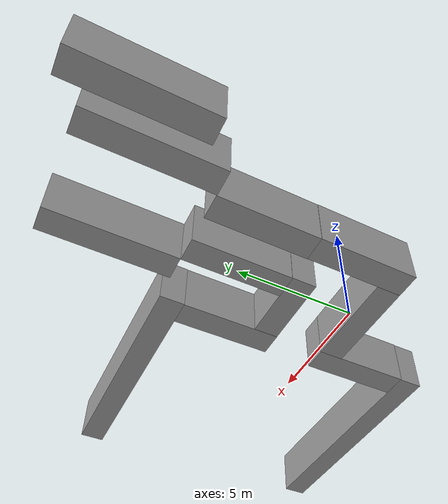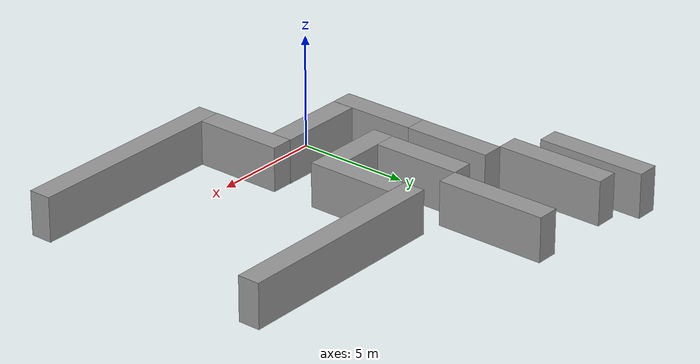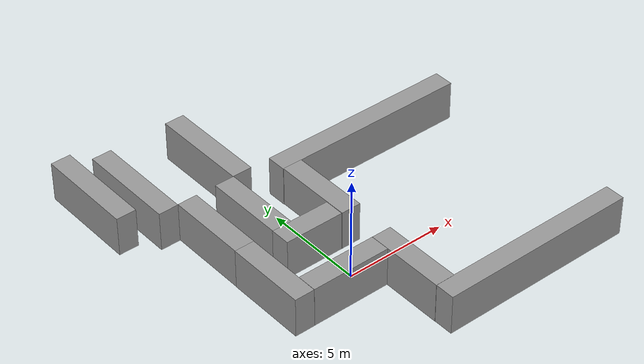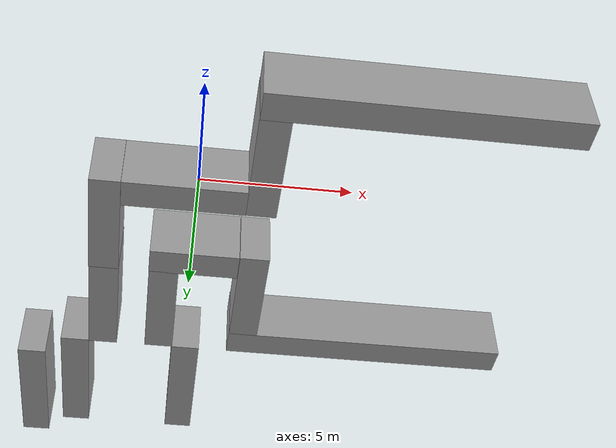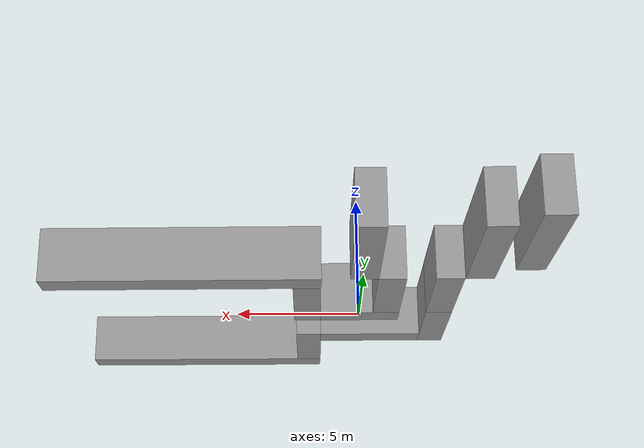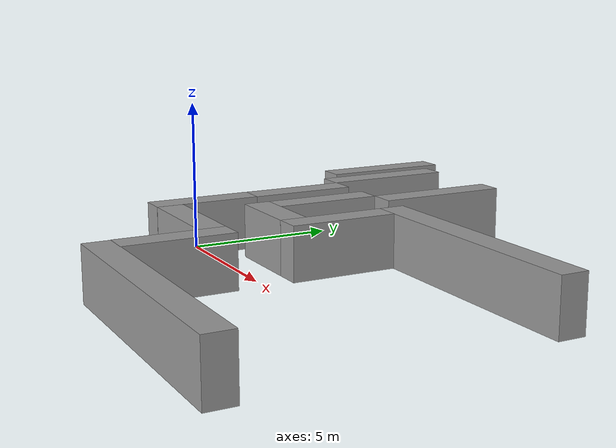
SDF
<?xml version='1.0'?>
<sdf version='1.7'>
  <model name='hsr_corridor_environment'>
    <link name='link'>
      <inertial>
        <mass>1</mass>
        <inertia>
          <ixx>0.166667</ixx>
          <ixy>0</ixy>
          <ixz>0</ixz>
          <iyy>0.166667</iyy>
          <iyz>0</iyz>
          <izz>0.166667</izz>
        </inertia>
        <pose>0 0 0 0 -0 0</pose>
      </inertial>
      <self_collide>0</self_collide>
      <enable_wind>0</enable_wind>
      <kinematic>0</kinematic>
      <pose>-0.422049 -0.023136 0 0 -0 0</pose>
      <gravity>1</gravity>
      <visual name='visual'>
        <geometry>
          <box>
            <size>4 1 2</size>
          </box>
        </geometry>
        <material>
          <script>
            <name>Gazebo/Grey</name>
            <uri>file://media/materials/scripts/gazebo.material</uri>
          </script>
          <shader type='pixel'>
            <normal_map>__default__</normal_map>
          </shader>
          <ambient>0.3 0.3 0.3 1</ambient>
          <diffuse>0.7 0.7 0.7 1</diffuse>
          <specular>0.01 0.01 0.01 1</specular>
          <emissive>0 0 0 1</emissive>
        </material>
        <pose>0 0 0 0 -0 0</pose>
        <transparency>0</transparency>
        <cast_shadows>1</cast_shadows>
      </visual>
      <collision name='collision'>
        <laser_retro>0</laser_retro>
        <max_contacts>10</max_contacts>
        <pose>0 0 0 0 -0 0</pose>
        <geometry>
          <box>
            <size>4 1 2</size>
          </box>
        </geometry>
        <surface>
          <friction>
            <ode>
              <mu>1</mu>
              <mu2>1</mu2>
              <fdir1>0 0 0</fdir1>
              <slip1>0</slip1>
              <slip2>0</slip2>
            </ode>
            <torsional>
              <coefficient>1</coefficient>
              <patch_radius>0</patch_radius>
              <surface_radius>0</surface_radius>
              <use_patch_radius>1</use_patch_radius>
              <ode>
                <slip>0</slip>
              </ode>
            </torsional>
          </friction>
          <bounce>
            <restitution_coefficient>0</restitution_coefficient>
            <threshold>1e+06</threshold>
          </bounce>
          <contact>
            <collide_without_contact>0</collide_without_contact>
            <collide_without_contact_bitmask>1</collide_without_contact_bitmask>
            <collide_bitmask>1</collide_bitmask>
            <ode>
              <soft_cfm>0</soft_cfm>
              <soft_erp>0.2</soft_erp>
              <kp>1e+13</kp>
              <kd>1</kd>
              <max_vel>0.01</max_vel>
              <min_depth>0</min_depth>
            </ode>
            <bullet>
              <split_impulse>1</split_impulse>
              <split_impulse_penetration_threshold>-0.01</split_impulse_penetration_threshold>
              <soft_cfm>0</soft_cfm>
              <soft_erp>0.2</soft_erp>
              <kp>1e+13</kp>
              <kd>1</kd>
            </bullet>
          </contact>
        </surface>
      </collision>
    </link>
    <link name='link_0'>
      <inertial>
        <mass>1</mass>
        <inertia>
          <ixx>0.166667</ixx>
          <ixy>0</ixy>
          <ixz>0</ixz>
          <iyy>0.166667</iyy>
          <iyz>0</iyz>
          <izz>0.166667</izz>
        </inertia>
        <pose>0 0 0 0 -0 0</pose>
      </inertial>
      <pose>-2.92683 1.47347 -0 0 -0 0</pose>
      <gravity>1</gravity>
      <self_collide>0</self_collide>
      <kinematic>0</kinematic>
      <enable_wind>0</enable_wind>
      <visual name='visual'>
        <pose>0 0 0 0 -0 0</pose>
        <geometry>
          <box>
            <size>1 4 2</size>
          </box>
        </geometry>
        <material>
          <lighting>1</lighting>
          <script>
            <uri>file://media/materials/scripts/gazebo.material</uri>
            <name>Gazebo/Grey</name>
          </script>
          <shader type='pixel'>
            <normal_map>__default__</normal_map>
          </shader>
          <ambient>0.3 0.3 0.3 1</ambient>
          <diffuse>0.7 0.7 0.7 1</diffuse>
          <specular>0.01 0.01 0.01 1</specular>
          <emissive>0 0 0 1</emissive>
        </material>
        <transparency>0</transparency>
        <cast_shadows>1</cast_shadows>
      </visual>
      <collision name='collision'>
        <laser_retro>0</laser_retro>
        <max_contacts>10</max_contacts>
        <pose>0 0 0 0 -0 0</pose>
        <geometry>
          <box>
            <size>1 4 2</size>
          </box>
        </geometry>
        <surface>
          <friction>
            <ode>
              <mu>1</mu>
              <mu2>1</mu2>
              <fdir1>0 0 0</fdir1>
              <slip1>0</slip1>
              <slip2>0</slip2>
            </ode>
            <torsional>
              <coefficient>1</coefficient>
              <patch_radius>0</patch_radius>
              <surface_radius>0</surface_radius>
              <use_patch_radius>1</use_patch_radius>
              <ode>
                <slip>0</slip>
              </ode>
            </torsional>
          </friction>
          <bounce>
            <restitution_coefficient>0</restitution_coefficient>
            <threshold>1e+06</threshold>
          </bounce>
          <contact>
            <collide_without_contact>0</collide_without_contact>
            <collide_without_contact_bitmask>1</collide_without_contact_bitmask>
            <collide_bitmask>1</collide_bitmask>
            <ode>
              <soft_cfm>0</soft_cfm>
              <soft_erp>0.2</soft_erp>
              <kp>1e+13</kp>
              <kd>1</kd>
              <max_vel>0.01</max_vel>
              <min_depth>0</min_depth>
            </ode>
            <bullet>
              <split_impulse>1</split_impulse>
              <split_impulse_penetration_threshold>-0.01</split_impulse_penetration_threshold>
              <soft_cfm>0</soft_cfm>
              <soft_erp>0.2</soft_erp>
              <kp>1e+13</kp>
              <kd>1</kd>
            </bullet>
          </contact>
        </surface>
      </collision>
    </link>
    <link name='link_2'>
      <inertial>
        <mass>1</mass>
        <inertia>
          <ixx>0.166667</ixx>
          <ixy>0</ixy>
          <ixz>0</ixz>
          <iyy>0.166667</iyy>
          <iyz>0</iyz>
          <izz>0.166667</izz>
        </inertia>
        <pose>0 0 0 0 -0 0</pose>
      </inertial>
      <pose>0.093366 2.99271 0 0 -0 0</pose>
      <gravity>1</gravity>
      <self_collide>0</self_collide>
      <kinematic>0</kinematic>
      <enable_wind>0</enable_wind>
      <visual name='visual'>
        <pose>0 0 0 0 -0 0</pose>
        <geometry>
          <box>
            <size>3 1 2</size>
          </box>
        </geometry>
        <material>
          <lighting>1</lighting>
          <script>
            <uri>file://media/materials/scripts/gazebo.material</uri>
            <name>Gazebo/Grey</name>
          </script>
          <shader type='pixel'>
            <normal_map>__default__</normal_map>
          </shader>
          <ambient>0.3 0.3 0.3 1</ambient>
          <diffuse>0.7 0.7 0.7 1</diffuse>
          <specular>0.01 0.01 0.01 1</specular>
          <emissive>0 0 0 1</emissive>
        </material>
        <transparency>0</transparency>
        <cast_shadows>1</cast_shadows>
      </visual>
      <collision name='collision'>
        <laser_retro>0</laser_retro>
        <max_contacts>10</max_contacts>
        <pose>0 0 0 0 -0 0</pose>
        <geometry>
          <box>
            <size>3 1 2</size>
          </box>
        </geometry>
        <surface>
          <friction>
            <ode>
              <mu>1</mu>
              <mu2>1</mu2>
              <fdir1>0 0 0</fdir1>
              <slip1>0</slip1>
              <slip2>0</slip2>
            </ode>
            <torsional>
              <coefficient>1</coefficient>
              <patch_radius>0</patch_radius>
              <surface_radius>0</surface_radius>
              <use_patch_radius>1</use_patch_radius>
              <ode>
                <slip>0</slip>
              </ode>
            </torsional>
          </friction>
          <bounce>
            <restitution_coefficient>0</restitution_coefficient>
            <threshold>1e+06</threshold>
          </bounce>
          <contact>
            <collide_without_contact>0</collide_without_contact>
            <collide_without_contact_bitmask>1</collide_without_contact_bitmask>
            <collide_bitmask>1</collide_bitmask>
            <ode>
              <soft_cfm>0</soft_cfm>
              <soft_erp>0.2</soft_erp>
              <kp>1e+13</kp>
              <kd>1</kd>
              <max_vel>0.01</max_vel>
              <min_depth>0</min_depth>
            </ode>
            <bullet>
              <split_impulse>1</split_impulse>
              <split_impulse_penetration_threshold>-0.01</split_impulse_penetration_threshold>
              <soft_cfm>0</soft_cfm>
              <soft_erp>0.2</soft_erp>
              <kp>1e+13</kp>
              <kd>1</kd>
            </bullet>
          </contact>
        </surface>
      </collision>
    </link>
    <link name='link_3'>
      <inertial>
        <mass>1</mass>
        <inertia>
          <ixx>0.166667</ixx>
          <ixy>0</ixy>
          <ixz>0</ixz>
          <iyy>0.166667</iyy>
          <iyz>0</iyz>
          <izz>0.166667</izz>
        </inertia>
        <pose>0 0 0 0 -0 0</pose>
      </inertial>
      <pose>-0.898813 5.47054 0 0 -0 0</pose>
      <gravity>1</gravity>
      <self_collide>0</self_collide>
      <kinematic>0</kinematic>
      <enable_wind>0</enable_wind>
      <visual name='visual'>
        <pose>0 0 0 0 -0 0</pose>
        <geometry>
          <box>
            <size>1 4 2</size>
          </box>
        </geometry>
        <material>
          <lighting>1</lighting>
          <script>
            <uri>file://media/materials/scripts/gazebo.material</uri>
            <name>Gazebo/Grey</name>
          </script>
          <shader type='pixel'>
            <normal_map>__default__</normal_map>
          </shader>
          <ambient>0.3 0.3 0.3 1</ambient>
          <diffuse>0.7 0.7 0.7 1</diffuse>
          <specular>0.01 0.01 0.01 1</specular>
          <emissive>0 0 0 1</emissive>
        </material>
        <transparency>0</transparency>
        <cast_shadows>1</cast_shadows>
      </visual>
      <collision name='collision'>
        <laser_retro>0</laser_retro>
        <max_contacts>10</max_contacts>
        <pose>0 0 0 0 -0 0</pose>
        <geometry>
          <box>
            <size>1 4 2</size>
          </box>
        </geometry>
        <surface>
          <friction>
            <ode>
              <mu>1</mu>
              <mu2>1</mu2>
              <fdir1>0 0 0</fdir1>
              <slip1>0</slip1>
              <slip2>0</slip2>
            </ode>
            <torsional>
              <coefficient>1</coefficient>
              <patch_radius>0</patch_radius>
              <surface_radius>0</surface_radius>
              <use_patch_radius>1</use_patch_radius>
              <ode>
                <slip>0</slip>
              </ode>
            </torsional>
          </friction>
          <bounce>
            <restitution_coefficient>0</restitution_coefficient>
            <threshold>1e+06</threshold>
          </bounce>
          <contact>
            <collide_without_contact>0</collide_without_contact>
            <collide_without_contact_bitmask>1</collide_without_contact_bitmask>
            <collide_bitmask>1</collide_bitmask>
            <ode>
              <soft_cfm>0</soft_cfm>
              <soft_erp>0.2</soft_erp>
              <kp>1e+13</kp>
              <kd>1</kd>
              <max_vel>0.01</max_vel>
              <min_depth>0</min_depth>
            </ode>
            <bullet>
              <split_impulse>1</split_impulse>
              <split_impulse_penetration_threshold>-0.01</split_impulse_penetration_threshold>
              <soft_cfm>0</soft_cfm>
              <soft_erp>0.2</soft_erp>
              <kp>1e+13</kp>
              <kd>1</kd>
            </bullet>
          </contact>
        </surface>
      </collision>
    </link>
    <link name='link_3_clone'>
      <inertial>
        <mass>1</mass>
        <inertia>
          <ixx>0.166667</ixx>
          <ixy>0</ixy>
          <ixz>0</ixz>
          <iyy>0.166667</iyy>
          <iyz>0</iyz>
          <izz>0.166667</izz>
        </inertia>
        <pose>0 0 0 0 -0 0</pose>
      </inertial>
      <pose>-2.91608 5.47433 -0 0 -0 0</pose>
      <gravity>1</gravity>
      <self_collide>0</self_collide>
      <kinematic>0</kinematic>
      <enable_wind>0</enable_wind>
      <visual name='visual'>
        <pose>0 0 0 0 -0 0</pose>
        <geometry>
          <box>
            <size>1 4 2</size>
          </box>
        </geometry>
        <material>
          <lighting>1</lighting>
          <script>
            <uri>file://media/materials/scripts/gazebo.material</uri>
            <name>Gazebo/Grey</name>
          </script>
          <shader type='pixel'>
            <normal_map>__default__</normal_map>
          </shader>
          <ambient>0.3 0.3 0.3 1</ambient>
          <diffuse>0.7 0.7 0.7 1</diffuse>
          <specular>0.01 0.01 0.01 1</specular>
          <emissive>0 0 0 1</emissive>
        </material>
        <transparency>0</transparency>
        <cast_shadows>1</cast_shadows>
      </visual>
      <collision name='collision'>
        <laser_retro>0</laser_retro>
        <max_contacts>10</max_contacts>
        <pose>0 0 0 0 -0 0</pose>
        <geometry>
          <box>
            <size>1 4 2</size>
          </box>
        </geometry>
        <surface>
          <friction>
            <ode>
              <mu>1</mu>
              <mu2>1</mu2>
              <fdir1>0 0 0</fdir1>
              <slip1>0</slip1>
              <slip2>0</slip2>
            </ode>
            <torsional>
              <coefficient>1</coefficient>
              <patch_radius>0</patch_radius>
              <surface_radius>0</surface_radius>
              <use_patch_radius>1</use_patch_radius>
              <ode>
                <slip>0</slip>
              </ode>
            </torsional>
          </friction>
          <bounce>
            <restitution_coefficient>0</restitution_coefficient>
            <threshold>1e+06</threshold>
          </bounce>
          <contact>
            <collide_without_contact>0</collide_without_contact>
            <collide_without_contact_bitmask>1</collide_without_contact_bitmask>
            <collide_bitmask>1</collide_bitmask>
            <ode>
              <soft_cfm>0</soft_cfm>
              <soft_erp>0.2</soft_erp>
              <kp>1e+13</kp>
              <kd>1</kd>
              <max_vel>0.01</max_vel>
              <min_depth>0</min_depth>
            </ode>
            <bullet>
              <split_impulse>1</split_impulse>
              <split_impulse_penetration_threshold>-0.01</split_impulse_penetration_threshold>
              <soft_cfm>0</soft_cfm>
              <soft_erp>0.2</soft_erp>
              <kp>1e+13</kp>
              <kd>1</kd>
            </bullet>
          </contact>
        </surface>
      </collision>
    </link>
    <link name='link_4'>
      <inertial>
        <mass>1</mass>
        <inertia>
          <ixx>0.166667</ixx>
          <ixy>0</ixy>
          <ixz>0</ixz>
          <iyy>0.166667</iyy>
          <iyz>0</iyz>
          <izz>0.166667</izz>
        </inertia>
        <pose>0 0 0 0 -0 0</pose>
      </inertial>
      <pose>2.06603 -1.53154 0.005231 0 -0 0</pose>
      <gravity>1</gravity>
      <self_collide>0</self_collide>
      <kinematic>0</kinematic>
      <enable_wind>0</enable_wind>
      <visual name='visual'>
        <pose>0 0 0 0 -0 0</pose>
        <geometry>
          <box>
            <size>1 4 2</size>
          </box>
        </geometry>
        <material>
          <lighting>1</lighting>
          <script>
            <uri>file://media/materials/scripts/gazebo.material</uri>
            <name>Gazebo/Grey</name>
          </script>
          <shader type='pixel'>
            <normal_map>__default__</normal_map>
          </shader>
          <ambient>0.3 0.3 0.3 1</ambient>
          <diffuse>0.7 0.7 0.7 1</diffuse>
          <specular>0.01 0.01 0.01 1</specular>
          <emissive>0 0 0 1</emissive>
        </material>
        <transparency>0</transparency>
        <cast_shadows>1</cast_shadows>
      </visual>
      <collision name='collision'>
        <laser_retro>0</laser_retro>
        <max_contacts>10</max_contacts>
        <pose>0 0 0 0 -0 0</pose>
        <geometry>
          <box>
            <size>1 4 2</size>
          </box>
        </geometry>
        <surface>
          <friction>
            <ode>
              <mu>1</mu>
              <mu2>1</mu2>
              <fdir1>0 0 0</fdir1>
              <slip1>0</slip1>
              <slip2>0</slip2>
            </ode>
            <torsional>
              <coefficient>1</coefficient>
              <patch_radius>0</patch_radius>
              <surface_radius>0</surface_radius>
              <use_patch_radius>1</use_patch_radius>
              <ode>
                <slip>0</slip>
              </ode>
            </torsional>
          </friction>
          <bounce>
            <restitution_coefficient>0</restitution_coefficient>
            <threshold>1e+06</threshold>
          </bounce>
          <contact>
            <collide_without_contact>0</collide_without_contact>
            <collide_without_contact_bitmask>1</collide_without_contact_bitmask>
            <collide_bitmask>1</collide_bitmask>
            <ode>
              <soft_cfm>0</soft_cfm>
              <soft_erp>0.2</soft_erp>
              <kp>1e+13</kp>
              <kd>1</kd>
              <max_vel>0.01</max_vel>
              <min_depth>0</min_depth>
            </ode>
            <bullet>
              <split_impulse>1</split_impulse>
              <split_impulse_penetration_threshold>-0.01</split_impulse_penetration_threshold>
              <soft_cfm>0</soft_cfm>
              <soft_erp>0.2</soft_erp>
              <kp>1e+13</kp>
              <kd>1</kd>
            </bullet>
          </contact>
        </surface>
      </collision>
    </link>
    <link name='link_4_clone'>
      <inertial>
        <mass>1</mass>
        <inertia>
          <ixx>0.166667</ixx>
          <ixy>0</ixy>
          <ixz>0</ixz>
          <iyy>0.166667</iyy>
          <iyz>0</iyz>
          <izz>0.166667</izz>
        </inertia>
        <pose>0 0 0 0 -0 0</pose>
      </inertial>
      <pose>2.10947 4.4852 0.005231 0 -0 0</pose>
      <gravity>1</gravity>
      <self_collide>0</self_collide>
      <kinematic>0</kinematic>
      <enable_wind>0</enable_wind>
      <visual name='visual'>
        <pose>0 0 0 0 -0 0</pose>
        <geometry>
          <box>
            <size>1 4 2</size>
          </box>
        </geometry>
        <material>
          <lighting>1</lighting>
          <script>
            <uri>file://media/materials/scripts/gazebo.material</uri>
            <name>Gazebo/Grey</name>
          </script>
          <shader type='pixel'>
            <normal_map>__default__</normal_map>
          </shader>
          <ambient>0.3 0.3 0.3 1</ambient>
          <diffuse>0.7 0.7 0.7 1</diffuse>
          <specular>0.01 0.01 0.01 1</specular>
          <emissive>0 0 0 1</emissive>
        </material>
        <transparency>0</transparency>
        <cast_shadows>1</cast_shadows>
      </visual>
      <collision name='collision'>
        <laser_retro>0</laser_retro>
        <max_contacts>10</max_contacts>
        <pose>0 0 0 0 -0 0</pose>
        <geometry>
          <box>
            <size>1 4 2</size>
          </box>
        </geometry>
        <surface>
          <friction>
            <ode>
              <mu>1</mu>
              <mu2>1</mu2>
              <fdir1>0 0 0</fdir1>
              <slip1>0</slip1>
              <slip2>0</slip2>
            </ode>
            <torsional>
              <coefficient>1</coefficient>
              <patch_radius>0</patch_radius>
              <surface_radius>0</surface_radius>
              <use_patch_radius>1</use_patch_radius>
              <ode>
                <slip>0</slip>
              </ode>
            </torsional>
          </friction>
          <bounce>
            <restitution_coefficient>0</restitution_coefficient>
            <threshold>1e+06</threshold>
          </bounce>
          <contact>
            <collide_without_contact>0</collide_without_contact>
            <collide_without_contact_bitmask>1</collide_without_contact_bitmask>
            <collide_bitmask>1</collide_bitmask>
            <ode>
              <soft_cfm>0</soft_cfm>
              <soft_erp>0.2</soft_erp>
              <kp>1e+13</kp>
              <kd>1</kd>
              <max_vel>0.01</max_vel>
              <min_depth>0</min_depth>
            </ode>
            <bullet>
              <split_impulse>1</split_impulse>
              <split_impulse_penetration_threshold>-0.01</split_impulse_penetration_threshold>
              <soft_cfm>0</soft_cfm>
              <soft_erp>0.2</soft_erp>
              <kp>1e+13</kp>
              <kd>1</kd>
            </bullet>
          </contact>
        </surface>
      </collision>
    </link>
    <link name='link_5'>
      <inertial>
        <mass>1</mass>
        <inertia>
          <ixx>0.166667</ixx>
          <ixy>0</ixy>
          <ixz>0</ixz>
          <iyy>0.166667</iyy>
          <iyz>0</iyz>
          <izz>0.166667</izz>
        </inertia>
        <pose>0 0 0 0 -0 0</pose>
      </inertial>
      <pose>6.58089 -4.00986 -0 0 -0 0</pose>
      <gravity>1</gravity>
      <self_collide>0</self_collide>
      <kinematic>0</kinematic>
      <enable_wind>0</enable_wind>
      <visual name='visual'>
        <pose>0 0 0 0 -0 0</pose>
        <geometry>
          <box>
            <size>10 1 2</size>
          </box>
        </geometry>
        <material>
          <lighting>1</lighting>
          <script>
            <uri>file://media/materials/scripts/gazebo.material</uri>
            <name>Gazebo/Grey</name>
          </script>
          <shader type='pixel'>
            <normal_map>__default__</normal_map>
          </shader>
          <ambient>0.3 0.3 0.3 1</ambient>
          <diffuse>0.7 0.7 0.7 1</diffuse>
          <specular>0.01 0.01 0.01 1</specular>
          <emissive>0 0 0 1</emissive>
        </material>
        <transparency>0</transparency>
        <cast_shadows>1</cast_shadows>
      </visual>
      <collision name='collision'>
        <laser_retro>0</laser_retro>
        <max_contacts>10</max_contacts>
        <pose>0 0 0 0 -0 0</pose>
        <geometry>
          <box>
            <size>10 1 2</size>
          </box>
        </geometry>
        <surface>
          <friction>
            <ode>
              <mu>1</mu>
              <mu2>1</mu2>
              <fdir1>0 0 0</fdir1>
              <slip1>0</slip1>
              <slip2>0</slip2>
            </ode>
            <torsional>
              <coefficient>1</coefficient>
              <patch_radius>0</patch_radius>
              <surface_radius>0</surface_radius>
              <use_patch_radius>1</use_patch_radius>
              <ode>
                <slip>0</slip>
              </ode>
            </torsional>
          </friction>
          <bounce>
            <restitution_coefficient>0</restitution_coefficient>
            <threshold>1e+06</threshold>
          </bounce>
          <contact>
            <collide_without_contact>0</collide_without_contact>
            <collide_without_contact_bitmask>1</collide_without_contact_bitmask>
            <collide_bitmask>1</collide_bitmask>
            <ode>
              <soft_cfm>0</soft_cfm>
              <soft_erp>0.2</soft_erp>
              <kp>1e+13</kp>
              <kd>1</kd>
              <max_vel>0.01</max_vel>
              <min_depth>0</min_depth>
            </ode>
            <bullet>
              <split_impulse>1</split_impulse>
              <split_impulse_penetration_threshold>-0.01</split_impulse_penetration_threshold>
              <soft_cfm>0</soft_cfm>
              <soft_erp>0.2</soft_erp>
              <kp>1e+13</kp>
              <kd>1</kd>
            </bullet>
          </contact>
        </surface>
      </collision>
    </link>
    <link name='link_5_clone'>
      <inertial>
        <mass>1</mass>
        <inertia>
          <ixx>0.166667</ixx>
          <ixy>0</ixy>
          <ixz>0</ixz>
          <iyy>0.166667</iyy>
          <iyz>0</iyz>
          <izz>0.166667</izz>
        </inertia>
        <pose>0 0 0 0 -0 0</pose>
      </inertial>
      <pose>6.58988 6.97574 0 0 -0 0</pose>
      <gravity>1</gravity>
      <self_collide>0</self_collide>
      <kinematic>0</kinematic>
      <enable_wind>0</enable_wind>
      <visual name='visual'>
        <pose>0 0 0 0 -0 0</pose>
        <geometry>
          <box>
            <size>10 1 2</size>
          </box>
        </geometry>
        <material>
          <lighting>1</lighting>
          <script>
            <uri>file://media/materials/scripts/gazebo.material</uri>
            <name>Gazebo/Grey</name>
          </script>
          <shader type='pixel'>
            <normal_map>__default__</normal_map>
          </shader>
          <ambient>0.3 0.3 0.3 1</ambient>
          <diffuse>0.7 0.7 0.7 1</diffuse>
          <specular>0.01 0.01 0.01 1</specular>
          <emissive>0 0 0 1</emissive>
        </material>
        <transparency>0</transparency>
        <cast_shadows>1</cast_shadows>
      </visual>
      <collision name='collision'>
        <laser_retro>0</laser_retro>
        <max_contacts>10</max_contacts>
        <pose>0 0 0 0 -0 0</pose>
        <geometry>
          <box>
            <size>10 1 2</size>
          </box>
        </geometry>
        <surface>
          <friction>
            <ode>
              <mu>1</mu>
              <mu2>1</mu2>
              <fdir1>0 0 0</fdir1>
              <slip1>0</slip1>
              <slip2>0</slip2>
            </ode>
            <torsional>
              <coefficient>1</coefficient>
              <patch_radius>0</patch_radius>
              <surface_radius>0</surface_radius>
              <use_patch_radius>1</use_patch_radius>
              <ode>
                <slip>0</slip>
              </ode>
            </torsional>
          </friction>
          <bounce>
            <restitution_coefficient>0</restitution_coefficient>
            <threshold>1e+06</threshold>
          </bounce>
          <contact>
            <collide_without_contact>0</collide_without_contact>
            <collide_without_contact_bitmask>1</collide_without_contact_bitmask>
            <collide_bitmask>1</collide_bitmask>
            <ode>
              <soft_cfm>0</soft_cfm>
              <soft_erp>0.2</soft_erp>
              <kp>1e+13</kp>
              <kd>1</kd>
              <max_vel>0.01</max_vel>
              <min_depth>0</min_depth>
            </ode>
            <bullet>
              <split_impulse>1</split_impulse>
              <split_impulse_penetration_threshold>-0.01</split_impulse_penetration_threshold>
              <soft_cfm>0</soft_cfm>
              <soft_erp>0.2</soft_erp>
              <kp>1e+13</kp>
              <kd>1</kd>
            </bullet>
          </contact>
        </surface>
      </collision>
    </link>
    <link name='link_6'>
      <inertial>
        <mass>1</mass>
        <inertia>
          <ixx>0.166667</ixx>
          <ixy>0</ixy>
          <ixz>0</ixz>
          <iyy>0.166667</iyy>
          <iyz>0</iyz>
          <izz>0.166667</izz>
        </inertia>
        <pose>0 0 0 0 -0 0</pose>
      </inertial>
      <pose>0.080783 9.9773 0 0 -0 0</pose>
      <gravity>1</gravity>
      <self_collide>0</self_collide>
      <kinematic>0</kinematic>
      <enable_wind>0</enable_wind>
      <visual name='visual'>
        <pose>0 0 0 0 -0 0</pose>
        <geometry>
          <box>
            <size>1 5 2</size>
          </box>
        </geometry>
        <material>
          <lighting>1</lighting>
          <script>
            <uri>file://media/materials/scripts/gazebo.material</uri>
            <name>Gazebo/Grey</name>
          </script>
          <shader type='pixel'>
            <normal_map>__default__</normal_map>
          </shader>
          <ambient>0.3 0.3 0.3 1</ambient>
          <diffuse>0.7 0.7 0.7 1</diffuse>
          <specular>0.01 0.01 0.01 1</specular>
          <emissive>0 0 0 1</emissive>
        </material>
        <transparency>0</transparency>
        <cast_shadows>1</cast_shadows>
      </visual>
      <collision name='collision'>
        <laser_retro>0</laser_retro>
        <max_contacts>10</max_contacts>
        <pose>0 0 0 0 -0 0</pose>
        <geometry>
          <box>
            <size>1 5 2</size>
          </box>
        </geometry>
        <surface>
          <friction>
            <ode>
              <mu>1</mu>
              <mu2>1</mu2>
              <fdir1>0 0 0</fdir1>
              <slip1>0</slip1>
              <slip2>0</slip2>
            </ode>
            <torsional>
              <coefficient>1</coefficient>
              <patch_radius>0</patch_radius>
              <surface_radius>0</surface_radius>
              <use_patch_radius>1</use_patch_radius>
              <ode>
                <slip>0</slip>
              </ode>
            </torsional>
          </friction>
          <bounce>
            <restitution_coefficient>0</restitution_coefficient>
            <threshold>1e+06</threshold>
          </bounce>
          <contact>
            <collide_without_contact>0</collide_without_contact>
            <collide_without_contact_bitmask>1</collide_without_contact_bitmask>
            <collide_bitmask>1</collide_bitmask>
            <ode>
              <soft_cfm>0</soft_cfm>
              <soft_erp>0.2</soft_erp>
              <kp>1e+13</kp>
              <kd>1</kd>
              <max_vel>0.01</max_vel>
              <min_depth>0</min_depth>
            </ode>
            <bullet>
              <split_impulse>1</split_impulse>
              <split_impulse_penetration_threshold>-0.01</split_impulse_penetration_threshold>
              <soft_cfm>0</soft_cfm>
              <soft_erp>0.2</soft_erp>
              <kp>1e+13</kp>
              <kd>1</kd>
            </bullet>
          </contact>
        </surface>
      </collision>
    </link>
    <link name='link_6_clone'>
      <inertial>
        <mass>1</mass>
        <inertia>
          <ixx>0.166667</ixx>
          <ixy>0</ixy>
          <ixz>0</ixz>
          <iyy>0.166667</iyy>
          <iyz>0</iyz>
          <izz>0.166667</izz>
        </inertia>
        <pose>0 0 0 0 -0 0</pose>
      </inertial>
      <pose>-5.51276 10.8426 0 0 -0 0</pose>
      <gravity>1</gravity>
      <self_collide>0</self_collide>
      <kinematic>0</kinematic>
      <enable_wind>0</enable_wind>
      <visual name='visual'>
        <pose>0 0 0 0 -0 0</pose>
        <geometry>
          <box>
            <size>1 5 2</size>
          </box>
        </geometry>
        <material>
          <lighting>1</lighting>
          <script>
            <uri>file://media/materials/scripts/gazebo.material</uri>
            <name>Gazebo/Grey</name>
          </script>
          <shader type='pixel'>
            <normal_map>__default__</normal_map>
          </shader>
          <ambient>0.3 0.3 0.3 1</ambient>
          <diffuse>0.7 0.7 0.7 1</diffuse>
          <specular>0.01 0.01 0.01 1</specular>
          <emissive>0 0 0 1</emissive>
        </material>
        <transparency>0</transparency>
        <cast_shadows>1</cast_shadows>
      </visual>
      <collision name='collision'>
        <laser_retro>0</laser_retro>
        <max_contacts>10</max_contacts>
        <pose>0 0 0 0 -0 0</pose>
        <geometry>
          <box>
            <size>1 5 2</size>
          </box>
        </geometry>
        <surface>
          <friction>
            <ode>
              <mu>1</mu>
              <mu2>1</mu2>
              <fdir1>0 0 0</fdir1>
              <slip1>0</slip1>
              <slip2>0</slip2>
            </ode>
            <torsional>
              <coefficient>1</coefficient>
              <patch_radius>0</patch_radius>
              <surface_radius>0</surface_radius>
              <use_patch_radius>1</use_patch_radius>
              <ode>
                <slip>0</slip>
              </ode>
            </torsional>
          </friction>
          <bounce>
            <restitution_coefficient>0</restitution_coefficient>
            <threshold>1e+06</threshold>
          </bounce>
          <contact>
            <collide_without_contact>0</collide_without_contact>
            <collide_without_contact_bitmask>1</collide_without_contact_bitmask>
            <collide_bitmask>1</collide_bitmask>
            <ode>
              <soft_cfm>0</soft_cfm>
              <soft_erp>0.2</soft_erp>
              <kp>1e+13</kp>
              <kd>1</kd>
              <max_vel>0.01</max_vel>
              <min_depth>0</min_depth>
            </ode>
            <bullet>
              <split_impulse>1</split_impulse>
              <split_impulse_penetration_threshold>-0.01</split_impulse_penetration_threshold>
              <soft_cfm>0</soft_cfm>
              <soft_erp>0.2</soft_erp>
              <kp>1e+13</kp>
              <kd>1</kd>
            </bullet>
          </contact>
        </surface>
      </collision>
    </link>
    <link name='link_6_clone_0'>
      <inertial>
        <mass>1</mass>
        <inertia>
          <ixx>0.166667</ixx>
          <ixy>0</ixy>
          <ixz>0</ixz>
          <iyy>0.166667</iyy>
          <iyz>0</iyz>
          <izz>0.166667</izz>
        </inertia>
        <pose>0 0 0 0 -0 0</pose>
      </inertial>
      <pose>-3.92966 9.95128 0 0 -0 0</pose>
      <gravity>1</gravity>
      <self_collide>0</self_collide>
      <kinematic>0</kinematic>
      <enable_wind>0</enable_wind>
      <visual name='visual'>
        <pose>0 0 0 0 -0 0</pose>
        <geometry>
          <box>
            <size>1 5 2</size>
          </box>
        </geometry>
        <material>
          <lighting>1</lighting>
          <script>
            <uri>file://media/materials/scripts/gazebo.material</uri>
            <name>Gazebo/Grey</name>
          </script>
          <shader type='pixel'>
            <normal_map>__default__</normal_map>
          </shader>
          <ambient>0.3 0.3 0.3 1</ambient>
          <diffuse>0.7 0.7 0.7 1</diffuse>
          <specular>0.01 0.01 0.01 1</specular>
          <emissive>0 0 0 1</emissive>
        </material>
        <transparency>0</transparency>
        <cast_shadows>1</cast_shadows>
      </visual>
      <collision name='collision'>
        <laser_retro>0</laser_retro>
        <max_contacts>10</max_contacts>
        <pose>0 0 0 0 -0 0</pose>
        <geometry>
          <box>
            <size>1 5 2</size>
          </box>
        </geometry>
        <surface>
          <friction>
            <ode>
              <mu>1</mu>
              <mu2>1</mu2>
              <fdir1>0 0 0</fdir1>
              <slip1>0</slip1>
              <slip2>0</slip2>
            </ode>
            <torsional>
              <coefficient>1</coefficient>
              <patch_radius>0</patch_radius>
              <surface_radius>0</surface_radius>
              <use_patch_radius>1</use_patch_radius>
              <ode>
                <slip>0</slip>
              </ode>
            </torsional>
          </friction>
          <bounce>
            <restitution_coefficient>0</restitution_coefficient>
            <threshold>1e+06</threshold>
          </bounce>
          <contact>
            <collide_without_contact>0</collide_without_contact>
            <collide_without_contact_bitmask>1</collide_without_contact_bitmask>
            <collide_bitmask>1</collide_bitmask>
            <ode>
              <soft_cfm>0</soft_cfm>
              <soft_erp>0.2</soft_erp>
              <kp>1e+13</kp>
              <kd>1</kd>
              <max_vel>0.01</max_vel>
              <min_depth>0</min_depth>
            </ode>
            <bullet>
              <split_impulse>1</split_impulse>
              <split_impulse_penetration_threshold>-0.01</split_impulse_penetration_threshold>
              <soft_cfm>0</soft_cfm>
              <soft_erp>0.2</soft_erp>
              <kp>1e+13</kp>
              <kd>1</kd>
            </bullet>
          </contact>
        </surface>
      </collision>
    </link>
    <static>0</static>
    <allow_auto_disable>1</allow_auto_disable>
  </model>
</sdf>
